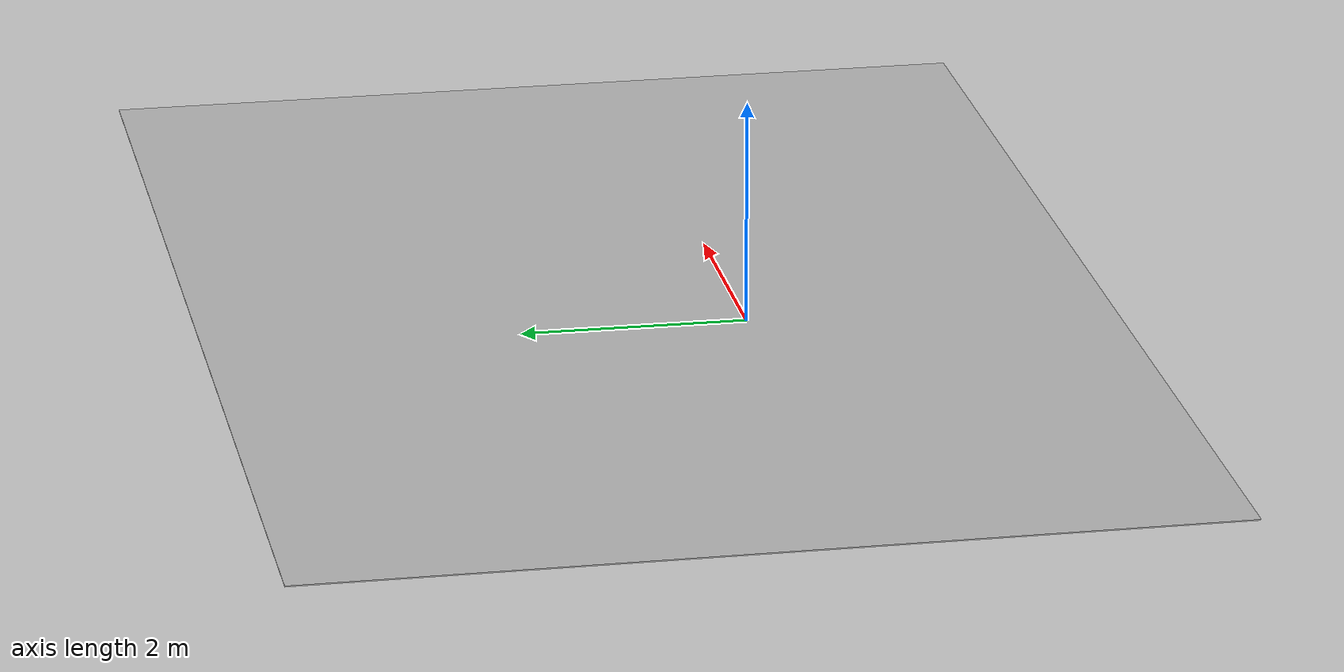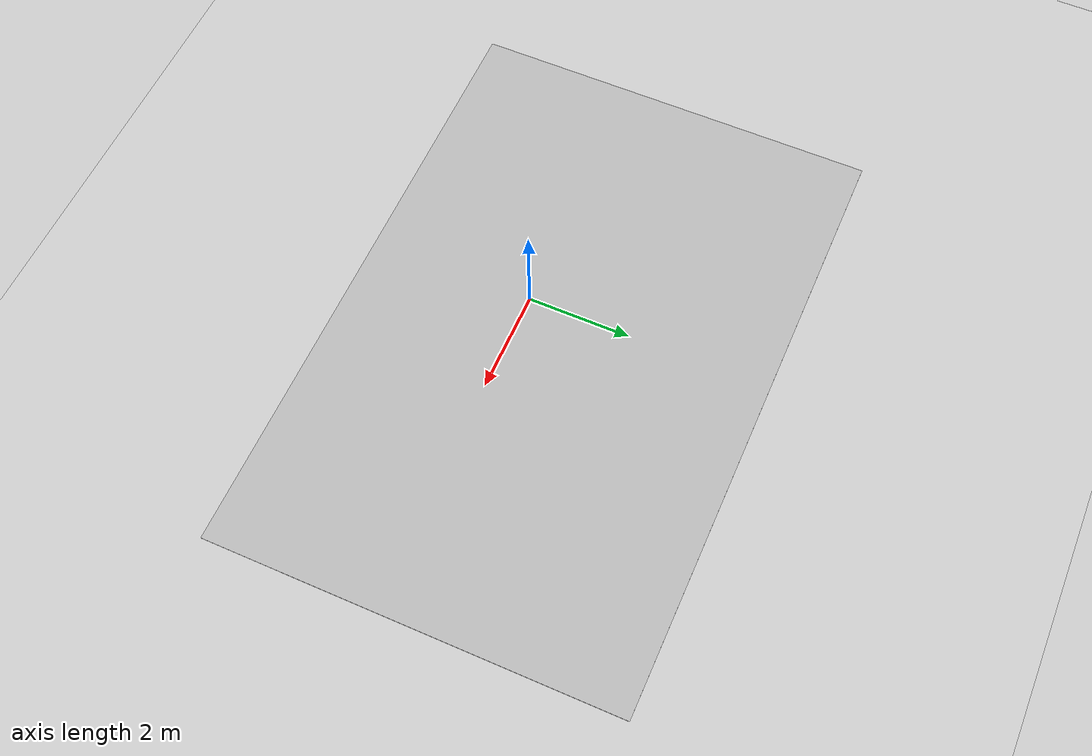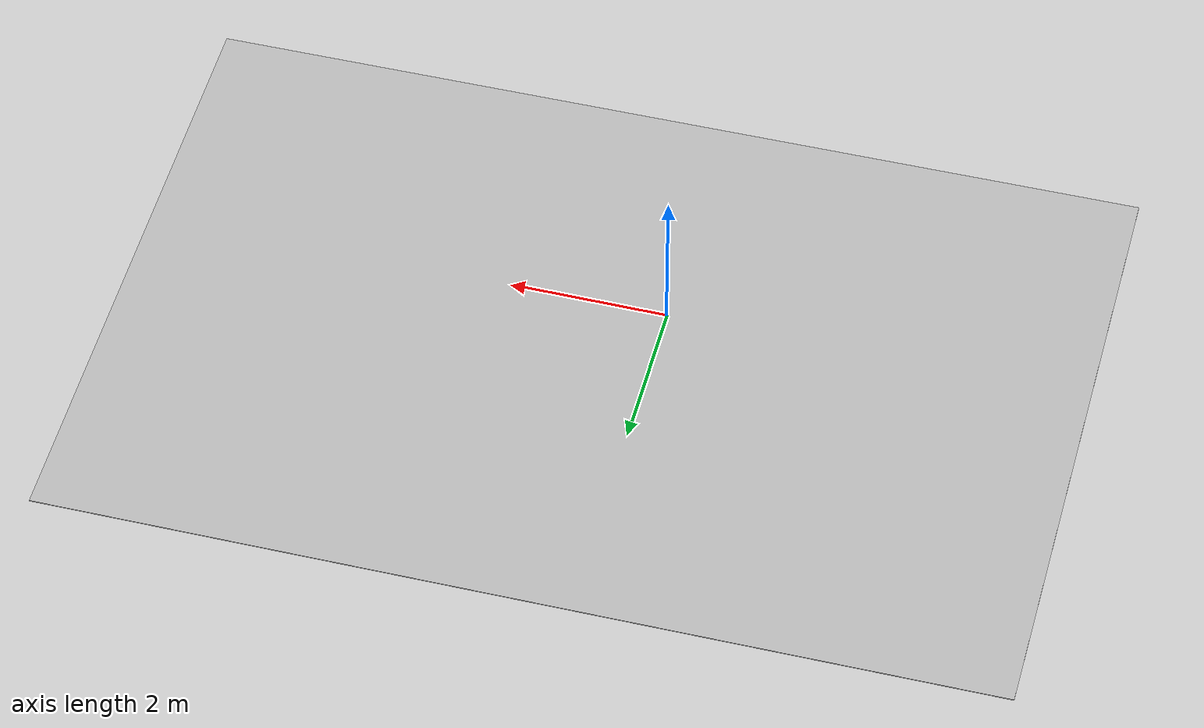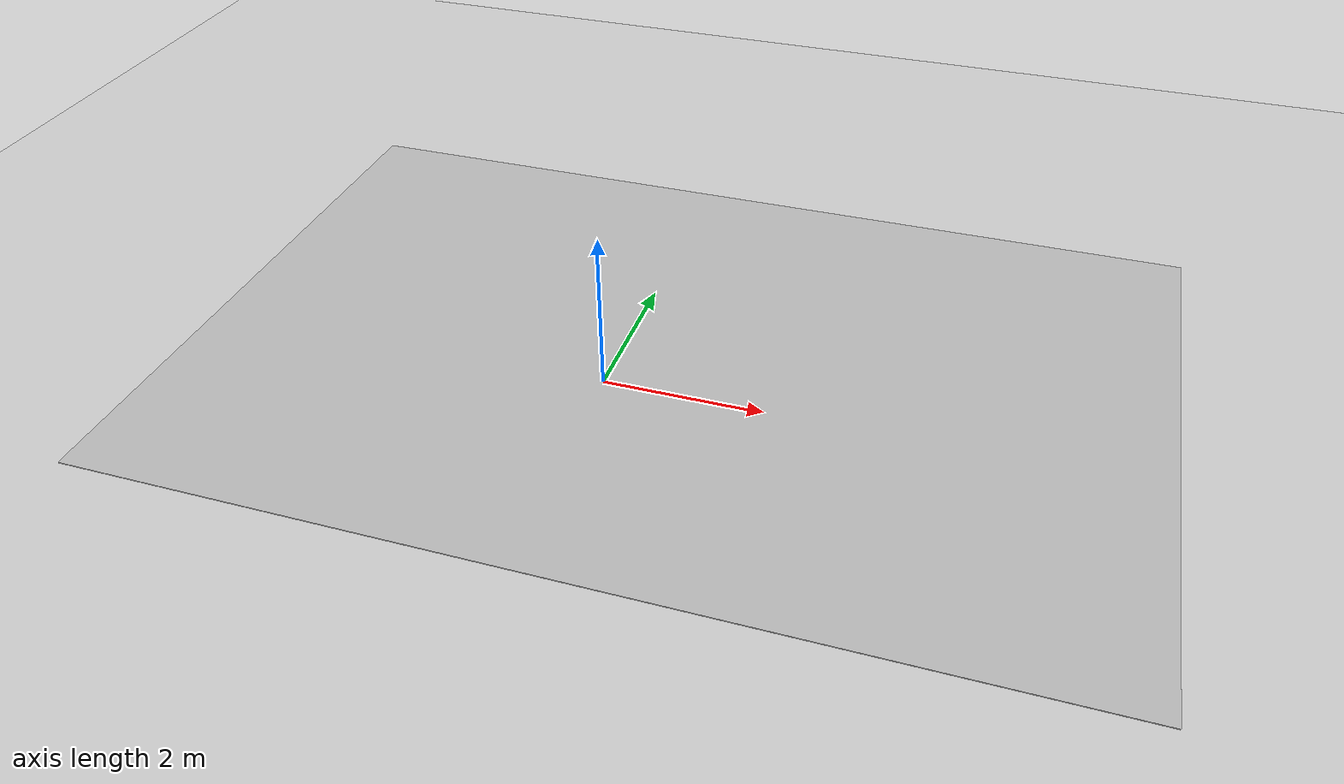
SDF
<sdf version='1.9'>
  <world name='empty'>
    <physics name='1ms' type='ignored'>
      <max_step_size>0.001</max_step_size>
      <real_time_factor>1</real_time_factor>
      <real_time_update_rate>1000</real_time_update_rate>
    </physics>
    <plugin name='gz::sim::systems::Physics' filename='ignition-gazebo-physics-system'/>
    <plugin name='gz::sim::systems::UserCommands' filename='ignition-gazebo-user-commands-system'/>
    <plugin name='gz::sim::systems::SceneBroadcaster' filename='ignition-gazebo-scene-broadcaster-system'/>
    <plugin name='gz::sim::systems::Contact' filename='ignition-gazebo-contact-system'/>
    <gravity>0 0 -9.8</gravity>
    <magnetic_field>6e-06 2.3e-05 -4.2e-05</magnetic_field>
    <atmosphere type='adiabatic'/>
    <scene>
      <ambient>0.4 0.4 0.4 1</ambient>
      <background>0.7 0.7 0.7 1</background>
      <shadows>true</shadows>
    </scene>
    <model name='ground_plane'>
      <static>true</static>
      <link name='link'>
        <collision name='collision'>
          <geometry>
            <plane>
              <normal>0 0 1</normal>
              <size>100 100</size>
            </plane>
          </geometry>
          <surface>
            <friction>
              <ode/>
            </friction>
            <bounce/>
            <contact/>
          </surface>
        </collision>
        <visual name='visual'>
          <geometry>
            <plane>
              <normal>0 0 1</normal>
              <size>100 100</size>
            </plane>
          </geometry>
          <material>
            <ambient>0.8 0.8 0.8 1</ambient>
            <diffuse>0.8 0.8 0.8 1</diffuse>
            <specular>0.8 0.8 0.8 1</specular>
          </material>
        </visual>
        <pose>0 0 0 0 -0 0</pose>
        <inertial>
          <pose>0 0 0 0 -0 0</pose>
          <mass>1</mass>
          <inertia>
            <ixx>1</ixx>
            <ixy>0</ixy>
            <ixz>0</ixz>
            <iyy>1</iyy>
            <iyz>0</iyz>
            <izz>1</izz>
          </inertia>
        </inertial>
        <enable_wind>false</enable_wind>
      </link>
      <pose>0 0 0 0 -0 0</pose>
      <self_collide>false</self_collide>
    </model>
    <model name='warehouse'>
      <link name='link'>
        <visual name='visual'>
          <geometry>
            <mesh>
              <uri>file:///tecdron_ws/src/robot_gazebo/models/Warehouse/meshes/warehouse.dae</uri>
            </mesh>
          </geometry>
        </visual>
        <collision name='collision'>
          <geometry>
            <mesh>
              <uri>file:///tecdron_ws/src/robot_gazebo/models/Warehouse/meshes/warehouse.dae</uri>
            </mesh>
          </geometry>
        </collision>
        <pose>0 0 0 0 -0 0</pose>
        <inertial>
          <pose>0 0 0 0 -0 0</pose>
          <mass>1</mass>
          <inertia>
            <ixx>1</ixx>
            <ixy>0</ixy>
            <ixz>0</ixz>
            <iyy>1</iyy>
            <iyz>0</iyz>
            <izz>1</izz>
          </inertia>
        </inertial>
        <enable_wind>false</enable_wind>
      </link>
      <pose>0.681894 0.768117 -3e-06 0 0 0</pose>
      <static>1</static>
      <allow_auto_disable>1</allow_auto_disable>
      <self_collide>false</self_collide>
    </model>
    <light name='sun' type='directional'>
      <pose>0 0 10 0 -0 0</pose>
      <cast_shadows>true</cast_shadows>
      <intensity>1</intensity>
      <direction>-0.5 0.1 -0.9</direction>
      <diffuse>0.8 0.8 0.8 1</diffuse>
      <specular>0.2 0.2 0.2 1</specular>
      <attenuation>
        <range>1000</range>
        <linear>0.01</linear>
        <constant>0.90000000000000002</constant>
        <quadratic>0.001</quadratic>
      </attenuation>
      <spot>
        <inner_angle>0</inner_angle>
        <outer_angle>0</outer_angle>
        <falloff>0</falloff>
      </spot>
    </light>
  </world>
</sdf>
